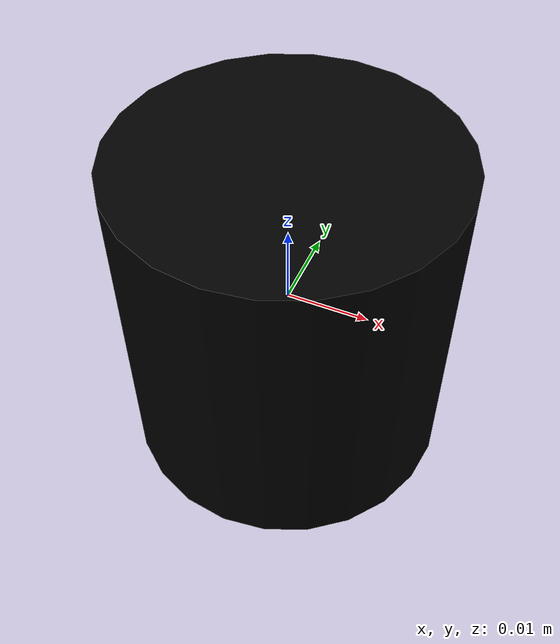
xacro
<?xml version="1.0"?>
<!--
SPDX-FileCopyrightText: Alliander N. V.
SPDX-License-Identifier: Apache-2.0
-->
<robot xmlns:xacro="http://www.ros.org/wiki/xacro" name="drotek_antenna">
  <xacro:macro name="drotek_da435"
    params="
    namespace:=ublox
    parent
    use_sim:=true
    ">

    <!-- Gazebo requires a joint to a link called "world" for statically mounted robots -->
    <xacro:if value="${parent == 'world'}">
      <link name="${parent}" />
      <joint name="${parent}_joint" type="fixed">
	<parent link="${parent}" />
	<child link="base_link" />
      </joint>
    </xacro:if>

    <link name="base_link"/>
    <link name="drotek_link">

      <visual>
	<origin xyz="0 0 0" rpy="0 0 0"/>
	<geometry>
	  <cylinder length="0.041" radius="0.02"/>
	</geometry>
	<material name="black">
	  <color rgba="0 0 0 1"/>
	</material>
      </visual>

      <collision>
	<origin xyz="0 0 0" rpy="0 0 0"/>
	<geometry>
	  <cylinder length="0.041" radius="0.02"/>
	</geometry>
      </collision>

      <inertial>
	<mass value="0.032"/>
	<origin xyz="0 0 0" rpy="0 0 0"/>
	<inertia ixx="0.00064" ixy="0.0" ixz="0.0"
				 iyy="0.0007683" iyz="0.0"
						izz="0.0007683"/>
      </inertial>

    </link>

    <joint name="drotek_joint" type="fixed">
      <parent link="base_link"/>
      <child  link="drotek_link"/>
      <origin xyz="0 0 0" rpy="0 0 0"/>
    </joint>

    <!-- Gazebo sensor -->
    <xacro:if value="${use_sim}">
      <gazebo reference="drotek_link">
	<sensor name="navsat" type="navsat">
	  <always_on>1</always_on>
	  <update_rate>5</update_rate>
	  <topic>${namespace}/gps/fix_raw</topic>
	  <gz_frame_id>${namespace}/base_link</gz_frame_id>
	  <navsat>
	    <position_sensing>
	      <horizontal>
		<noise type="gaussian">
		  <mean>0.0</mean>
		  <stddev>2e-7</stddev>
		</noise>
	      </horizontal>
	      <vertical>
		<noise type="gaussian">
		  <mean>0.0</mean>
		  <stddev>2e-7</stddev>
		</noise>
	      </vertical>
	    </position_sensing>
	  </navsat>
	</sensor>
      </gazebo>
    </xacro:if>
  </xacro:macro>
  <xacro:arg name="namespace" default="drotek" />
  <xacro:arg name="parent" default="" />
  <xacro:drotek_da435 namespace="$(arg namespace)" parent="$(arg parent)" />
</robot>
